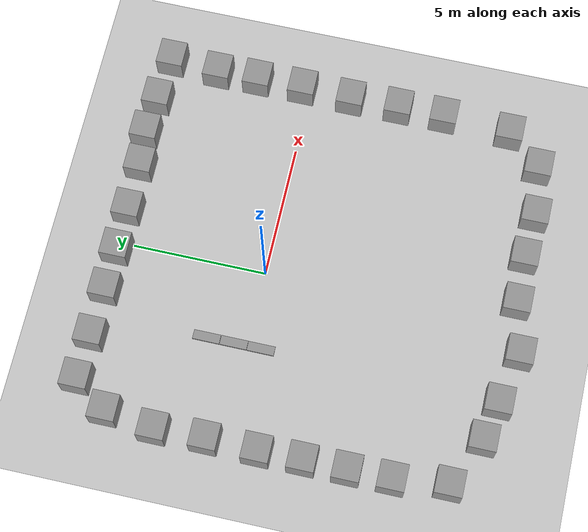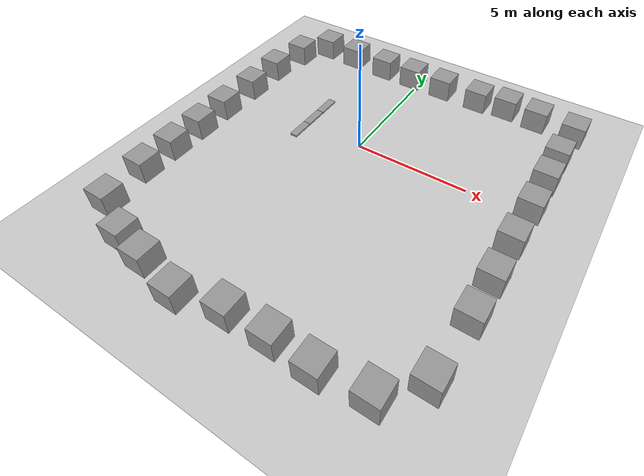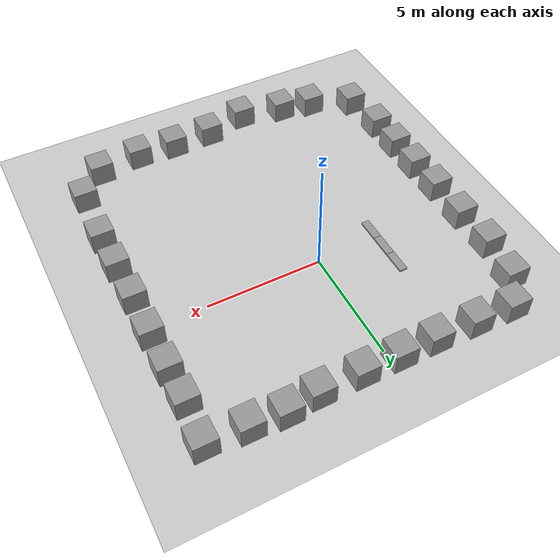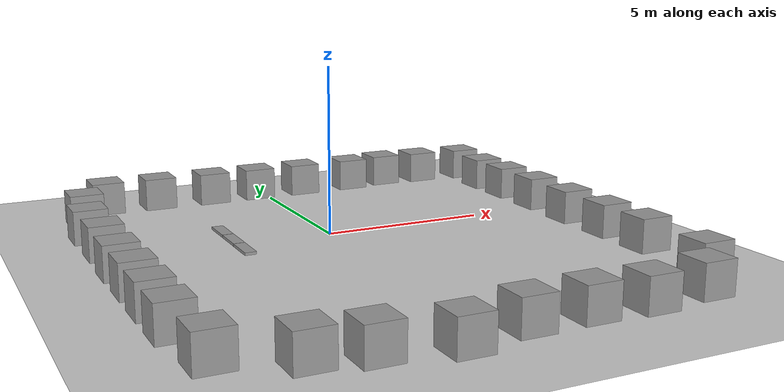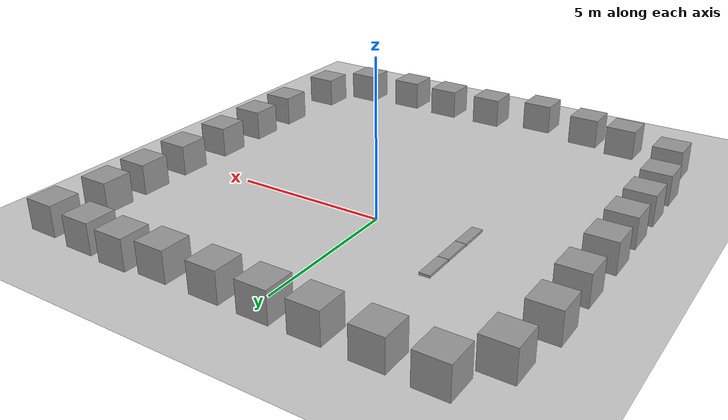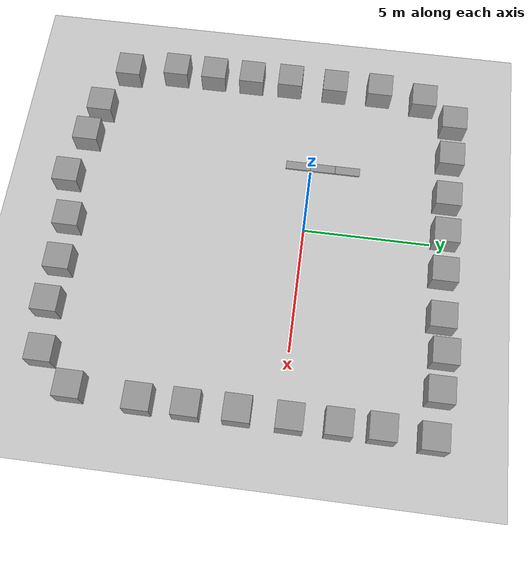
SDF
<sdf version="1.6">
 <world name="default">
  <light name="sun" type="directional">
   <pose>0 0 10 0 -0 0</pose>
   <diffuse>0.8 0.8 0.8 1</diffuse>
   <specular>0.2 0.2 0.2 1</specular>
   <attenuation>
    <range>1000</range>
    <constant>0.9</constant>
    <linear>0.01</linear>
    <quadratic>0.001</quadratic>
   </attenuation>
   <direction>-0.5 0.1 -0.9</direction>
  </light>
  <model name="ground_plane">
   <static>1</static>
   <link name="link">
    <collision name="collision">
     <geometry><plane><normal>0 0 1</normal><size>100 100</size></plane></geometry>
     <surface>
      <contact><collide_bitmask>65535</collide_bitmask></contact>
      <friction><ode><mu>100</mu><mu2>50</mu2></ode></friction>
     </surface>
    </collision>
    <visual name="visual">
     <cast_shadows>0</cast_shadows>
     <geometry><plane><normal>0 0 1</normal><size>100 100</size></plane></geometry>
     <material>
      <script><uri>file://media/materials/scripts/gazebo.material</uri><name>Gazebo/Grey</name></script>
     </material>
    </visual>
   </link>
  </model>
  <gravity>0 0 -9.8</gravity>
  <magnetic_field>6e-06 2.3e-05 -4.2e-05</magnetic_field>
  <atmosphere type="adiabatic"/>
  <physics name="default_physics" default="0" type="ode">
   <max_step_size>0.001</max_step_size>
   <real_time_factor>1</real_time_factor>
   <real_time_update_rate>1000</real_time_update_rate>
  </physics>
  <scene><ambient>0.4 0.4 0.4 1</ambient><background>0.7 0.7 0.7 1</background><shadows>1</shadows></scene>
  <audio><device>default</device></audio>
  <spherical_coordinates>
   <surface_model>EARTH_WGS84</surface_model>
   <latitude_deg>0</latitude_deg>
   <longitude_deg>0</longitude_deg>
   <elevation>0</elevation>
   <heading_deg>0</heading_deg>
  </spherical_coordinates>
  <model name="unit_box">
   <pose>-6.53679 -4.48156 0.499995 1e-05 -0 0</pose>
   <link name="link">
    <inertial>
     <mass>1</mass>
     <inertia>
      <ixx>0.166667</ixx>
      <ixy>0</ixy>
      <ixz>0</ixz>
      <iyy>0.166667</iyy>
      <iyz>0</iyz>
      <izz>0.166667</izz>
     </inertia>
    </inertial>
    <collision name="collision"><geometry><box><size>1 1 1</size></box></geometry></collision>
    <visual name="visual">
     <geometry><box><size>1 1 1</size></box></geometry>
     <material>
      <script><name>Gazebo/Grey</name><uri>file://media/materials/scripts/gazebo.material</uri></script>
     </material>
    </visual>
   </link>
  </model>
  <model name="unit_box_0">
   <pose>-6.54054 -2.87947 0.499995 0 1e-05 0</pose>
   <link name="link">
    <inertial>
     <mass>1</mass>
     <inertia>
      <ixx>0.166667</ixx>
      <ixy>0</ixy>
      <ixz>0</ixz>
      <iyy>0.166667</iyy>
      <iyz>0</iyz>
      <izz>0.166667</izz>
     </inertia>
    </inertial>
    <collision name="collision"><geometry><box><size>1 1 1</size></box></geometry></collision>
    <visual name="visual">
     <geometry><box><size>1 1 1</size></box></geometry>
     <material>
      <script><name>Gazebo/Grey</name><uri>file://media/materials/scripts/gazebo.material</uri></script>
     </material>
    </visual>
   </link>
  </model>
  <model name="unit_box_1">
   <pose>-6.56954 -1.25198 0.499995 1e-05 -0 0</pose>
   <link name="link">
    <inertial>
     <mass>1</mass>
     <inertia>
      <ixx>0.166667</ixx>
      <ixy>0</ixy>
      <ixz>0</ixz>
      <iyy>0.166667</iyy>
      <iyz>0</iyz>
      <izz>0.166667</izz>
     </inertia>
    </inertial>
    <collision name="collision"><geometry><box><size>1 1 1</size></box></geometry></collision>
    <visual name="visual">
     <geometry><box><size>1 1 1</size></box></geometry>
     <material>
      <script><name>Gazebo/Grey</name><uri>file://media/materials/scripts/gazebo.material</uri></script>
     </material>
    </visual>
   </link>
  </model>
  <model name="unit_box_2">
   <pose>-6.53671 0.638358 0.499995 0 1e-05 0</pose>
   <link name="link">
    <inertial>
     <mass>1</mass>
     <inertia>
      <ixx>0.166667</ixx>
      <ixy>0</ixy>
      <ixz>0</ixz>
      <iyy>0.166667</iyy>
      <iyz>0</iyz>
      <izz>0.166667</izz>
     </inertia>
    </inertial>
    <collision name="collision"><geometry><box><size>1 1 1</size></box></geometry></collision>
    <visual name="visual">
     <geometry><box><size>1 1 1</size></box></geometry>
     <material>
      <script><name>Gazebo/Grey</name><uri>file://media/materials/scripts/gazebo.material</uri></script>
     </material>
    </visual>
   </link>
  </model>
  <model name="unit_box_3">
   <pose>-6.52191 -6.07977 0.499995 1e-05 -0 0</pose>
   <link name="link">
    <inertial>
     <mass>1</mass>
     <inertia>
      <ixx>0.166667</ixx>
      <ixy>0</ixy>
      <ixz>0</ixz>
      <iyy>0.166667</iyy>
      <iyz>0</iyz>
      <izz>0.166667</izz>
     </inertia>
    </inertial>
    <collision name="collision"><geometry><box><size>1 1 1</size></box></geometry></collision>
    <visual name="visual">
     <geometry><box><size>1 1 1</size></box></geometry>
     <material>
      <script><name>Gazebo/Grey</name><uri>file://media/materials/scripts/gazebo.material</uri></script>
     </material>
    </visual>
   </link>
  </model>
  <model name="unit_box_4">
   <pose>-4.44257 -8.93231 0.499995 1e-05 -0 0</pose>
   <link name="link">
    <inertial>
     <mass>1</mass>
     <inertia>
      <ixx>0.166667</ixx>
      <ixy>0</ixy>
      <ixz>0</ixz>
      <iyy>0.166667</iyy>
      <iyz>0</iyz>
      <izz>0.166667</izz>
     </inertia>
    </inertial>
    <collision name="collision"><geometry><box><size>1 1 1</size></box></geometry></collision>
    <visual name="visual">
     <geometry><box><size>1 1 1</size></box></geometry>
     <material>
      <script><name>Gazebo/Grey</name><uri>file://media/materials/scripts/gazebo.material</uri></script>
     </material>
    </visual>
   </link>
  </model>
  <model name="unit_box_5">
   <pose>-3.00258 -9.22878 0.499995 0 1e-05 0</pose>
   <link name="link">
    <inertial>
     <mass>1</mass>
     <inertia>
      <ixx>0.166667</ixx>
      <ixy>0</ixy>
      <ixz>0</ixz>
      <iyy>0.166667</iyy>
      <iyz>0</iyz>
      <izz>0.166667</izz>
     </inertia>
    </inertial>
    <collision name="collision"><geometry><box><size>1 1 1</size></box></geometry></collision>
    <visual name="visual">
     <geometry><box><size>1 1 1</size></box></geometry>
     <material>
      <script><name>Gazebo/Grey</name><uri>file://media/materials/scripts/gazebo.material</uri></script>
     </material>
    </visual>
   </link>
  </model>
  <model name="unit_box_6">
   <pose>-1.05987 -9.63701 0.499995 0 1e-05 0</pose>
   <link name="link">
    <inertial>
     <mass>1</mass>
     <inertia>
      <ixx>0.166667</ixx>
      <ixy>0</ixy>
      <ixz>0</ixz>
      <iyy>0.166667</iyy>
      <iyz>0</iyz>
      <izz>0.166667</izz>
     </inertia>
    </inertial>
    <collision name="collision"><geometry><box><size>1 1 1</size></box></geometry></collision>
    <visual name="visual">
     <geometry><box><size>1 1 1</size></box></geometry>
     <material>
      <script><name>Gazebo/Grey</name><uri>file://media/materials/scripts/gazebo.material</uri></script>
     </material>
    </visual>
   </link>
  </model>
  <model name="unit_box_7">
   <pose>0.817007 -9.20678 0.499995 0 1e-05 0</pose>
   <link name="link">
    <inertial>
     <mass>1</mass>
     <inertia>
      <ixx>0.166667</ixx>
      <ixy>0</ixy>
      <ixz>0</ixz>
      <iyy>0.166667</iyy>
      <iyz>0</iyz>
      <izz>0.166667</izz>
     </inertia>
    </inertial>
    <collision name="collision"><geometry><box><size>1 1 1</size></box></geometry></collision>
    <visual name="visual">
     <geometry><box><size>1 1 1</size></box></geometry>
     <material>
      <script><name>Gazebo/Grey</name><uri>file://media/materials/scripts/gazebo.material</uri></script>
     </material>
    </visual>
   </link>
  </model>
  <model name="unit_box_8">
   <pose>2.61171 -9.16624 0.499995 1e-05 -0 0</pose>
   <link name="link">
    <inertial>
     <mass>1</mass>
     <inertia>
      <ixx>0.166667</ixx>
      <ixy>0</ixy>
      <ixz>0</ixz>
      <iyy>0.166667</iyy>
      <iyz>0</iyz>
      <izz>0.166667</izz>
     </inertia>
    </inertial>
    <collision name="collision"><geometry><box><size>1 1 1</size></box></geometry></collision>
    <visual name="visual">
     <geometry><box><size>1 1 1</size></box></geometry>
     <material>
      <script><name>Gazebo/Grey</name><uri>file://media/materials/scripts/gazebo.material</uri></script>
     </material>
    </visual>
   </link>
  </model>
  <model name="unit_box_9">
   <pose>4.31245 -9.25247 0.499995 0 1e-05 0</pose>
   <link name="link">
    <inertial>
     <mass>1</mass>
     <inertia>
      <ixx>0.166667</ixx>
      <ixy>0</ixy>
      <ixz>0</ixz>
      <iyy>0.166667</iyy>
      <iyz>0</iyz>
      <izz>0.166667</izz>
     </inertia>
    </inertial>
    <collision name="collision"><geometry><box><size>1 1 1</size></box></geometry></collision>
    <visual name="visual">
     <geometry><box><size>1 1 1</size></box></geometry>
     <material>
      <script><name>Gazebo/Grey</name><uri>file://media/materials/scripts/gazebo.material</uri></script>
     </material>
    </visual>
   </link>
  </model>
  <model name="unit_box_10">
   <pose>6.20244 -9.03196 0.499995 0 1e-05 0</pose>
   <link name="link">
    <inertial>
     <mass>1</mass>
     <inertia>
      <ixx>0.166667</ixx>
      <ixy>0</ixy>
      <ixz>0</ixz>
      <iyy>0.166667</iyy>
      <iyz>0</iyz>
      <izz>0.166667</izz>
     </inertia>
    </inertial>
    <collision name="collision"><geometry><box><size>1 1 1</size></box></geometry></collision>
    <visual name="visual">
     <geometry><box><size>1 1 1</size></box></geometry>
     <material>
      <script><name>Gazebo/Grey</name><uri>file://media/materials/scripts/gazebo.material</uri></script>
     </material>
    </visual>
   </link>
  </model>
  <model name="unit_box_11">
   <pose>7.50601 -5.19262 0.499995 1e-05 -0 0</pose>
   <link name="link">
    <inertial>
     <mass>1</mass>
     <inertia>
      <ixx>0.166667</ixx>
      <ixy>0</ixy>
      <ixz>0</ixz>
      <iyy>0.166667</iyy>
      <iyz>0</iyz>
      <izz>0.166667</izz>
     </inertia>
    </inertial>
    <collision name="collision"><geometry><box><size>1 1 1</size></box></geometry></collision>
    <visual name="visual">
     <geometry><box><size>1 1 1</size></box></geometry>
     <material>
      <script><name>Gazebo/Grey</name><uri>file://media/materials/scripts/gazebo.material</uri></script>
     </material>
    </visual>
   </link>
  </model>
  <model name="unit_box_12">
   <pose>7.49559 -3.44066 0.499995 0 1e-05 0</pose>
   <link name="link">
    <inertial>
     <mass>1</mass>
     <inertia>
      <ixx>0.166667</ixx>
      <ixy>0</ixy>
      <ixz>0</ixz>
      <iyy>0.166667</iyy>
      <iyz>0</iyz>
      <izz>0.166667</izz>
     </inertia>
    </inertial>
    <collision name="collision"><geometry><box><size>1 1 1</size></box></geometry></collision>
    <visual name="visual">
     <geometry><box><size>1 1 1</size></box></geometry>
     <material>
      <script><name>Gazebo/Grey</name><uri>file://media/materials/scripts/gazebo.material</uri></script>
     </material>
    </visual>
   </link>
  </model>
  <model name="unit_box_13">
   <pose>7.46605 -1.59912 0.499995 1e-05 -0 0</pose>
   <link name="link">
    <inertial>
     <mass>1</mass>
     <inertia>
      <ixx>0.166667</ixx>
      <ixy>0</ixy>
      <ixz>0</ixz>
      <iyy>0.166667</iyy>
      <iyz>0</iyz>
      <izz>0.166667</izz>
     </inertia>
    </inertial>
    <collision name="collision"><geometry><box><size>1 1 1</size></box></geometry></collision>
    <visual name="visual">
     <geometry><box><size>1 1 1</size></box></geometry>
     <material>
      <script><name>Gazebo/Grey</name><uri>file://media/materials/scripts/gazebo.material</uri></script>
     </material>
    </visual>
   </link>
  </model>
  <model name="unit_box_14">
   <pose>7.50448 0.287221 0.499995 0 1e-05 0</pose>
   <link name="link">
    <inertial>
     <mass>1</mass>
     <inertia>
      <ixx>0.166667</ixx>
      <ixy>0</ixy>
      <ixz>0</ixz>
      <iyy>0.166667</iyy>
      <iyz>0</iyz>
      <izz>0.166667</izz>
     </inertia>
    </inertial>
    <collision name="collision"><geometry><box><size>1 1 1</size></box></geometry></collision>
    <visual name="visual">
     <geometry><box><size>1 1 1</size></box></geometry>
     <material>
      <script><name>Gazebo/Grey</name><uri>file://media/materials/scripts/gazebo.material</uri></script>
     </material>
    </visual>
   </link>
  </model>
  <model name="unit_box_15">
   <pose>7.49087 2.03632 0.499995 1e-05 -0 0</pose>
   <link name="link">
    <inertial>
     <mass>1</mass>
     <inertia>
      <ixx>0.166667</ixx>
      <ixy>0</ixy>
      <ixz>0</ixz>
      <iyy>0.166667</iyy>
      <iyz>0</iyz>
      <izz>0.166667</izz>
     </inertia>
    </inertial>
    <collision name="collision"><geometry><box><size>1 1 1</size></box></geometry></collision>
    <visual name="visual">
     <geometry><box><size>1 1 1</size></box></geometry>
     <material>
      <script><name>Gazebo/Grey</name><uri>file://media/materials/scripts/gazebo.material</uri></script>
     </material>
    </visual>
   </link>
  </model>
  <model name="unit_box_16">
   <pose>7.46502 3.58569 0.499995 0 1e-05 0</pose>
   <link name="link">
    <inertial>
     <mass>1</mass>
     <inertia>
      <ixx>0.166667</ixx>
      <ixy>0</ixy>
      <ixz>0</ixz>
      <iyy>0.166667</iyy>
      <iyz>0</iyz>
      <izz>0.166667</izz>
     </inertia>
    </inertial>
    <collision name="collision"><geometry><box><size>1 1 1</size></box></geometry></collision>
    <visual name="visual">
     <geometry><box><size>1 1 1</size></box></geometry>
     <material>
      <script><name>Gazebo/Grey</name><uri>file://media/materials/scripts/gazebo.material</uri></script>
     </material>
    </visual>
   </link>
  </model>
  <model name="unit_box_17">
   <pose>7.58514 5.41899 0.499995 1e-05 -0 0</pose>
   <link name="link">
    <inertial>
     <mass>1</mass>
     <inertia>
      <ixx>0.166667</ixx>
      <ixy>0</ixy>
      <ixz>0</ixz>
      <iyy>0.166667</iyy>
      <iyz>0</iyz>
      <izz>0.166667</izz>
     </inertia>
    </inertial>
    <collision name="collision"><geometry><box><size>1 1 1</size></box></geometry></collision>
    <visual name="visual">
     <geometry><box><size>1 1 1</size></box></geometry>
     <material>
      <script><name>Gazebo/Grey</name><uri>file://media/materials/scripts/gazebo.material</uri></script>
     </material>
    </visual>
   </link>
  </model>
  <model name="unit_box_18">
   <pose>-6.57991 2.5031 0.499995 0 1e-05 0</pose>
   <link name="link">
    <inertial>
     <mass>1</mass>
     <inertia>
      <ixx>0.166667</ixx>
      <ixy>0</ixy>
      <ixz>0</ixz>
      <iyy>0.166667</iyy>
      <iyz>0</iyz>
      <izz>0.166667</izz>
     </inertia>
    </inertial>
    <collision name="collision"><geometry><box><size>1 1 1</size></box></geometry></collision>
    <visual name="visual">
     <geometry><box><size>1 1 1</size></box></geometry>
     <material>
      <script><name>Gazebo/Grey</name><uri>file://media/materials/scripts/gazebo.material</uri></script>
     </material>
    </visual>
   </link>
  </model>
  <model name="unit_box_19">
   <pose>-6.30877 4.35515 0.499995 1e-05 -0 0</pose>
   <link name="link">
    <inertial>
     <mass>1</mass>
     <inertia>
      <ixx>0.166667</ixx>
      <ixy>0</ixy>
      <ixz>0</ixz>
      <iyy>0.166667</iyy>
      <iyz>0</iyz>
      <izz>0.166667</izz>
     </inertia>
    </inertial>
    <collision name="collision"><geometry><box><size>1 1 1</size></box></geometry></collision>
    <visual name="visual">
     <geometry><box><size>1 1 1</size></box></geometry>
     <material>
      <script><name>Gazebo/Grey</name><uri>file://media/materials/scripts/gazebo.material</uri></script>
     </material>
    </visual>
   </link>
  </model>
  <model name="unit_box_20">
   <pose>-5.38758 5.63065 0.499995 0 1e-05 0</pose>
   <link name="link">
    <inertial>
     <mass>1</mass>
     <inertia>
      <ixx>0.166667</ixx>
      <ixy>0</ixy>
      <ixz>0</ixz>
      <iyy>0.166667</iyy>
      <iyz>0</iyz>
      <izz>0.166667</izz>
     </inertia>
    </inertial>
    <collision name="collision"><geometry><box><size>1 1 1</size></box></geometry></collision>
    <visual name="visual">
     <geometry><box><size>1 1 1</size></box></geometry>
     <material>
      <script><name>Gazebo/Grey</name><uri>file://media/materials/scripts/gazebo.material</uri></script>
     </material>
    </visual>
   </link>
  </model>
  <model name="unit_box_21">
   <pose>-3.70928 5.57719 0.499995 1e-05 -0 0</pose>
   <link name="link">
    <inertial>
     <mass>1</mass>
     <inertia>
      <ixx>0.166667</ixx>
      <ixy>0</ixy>
      <ixz>0</ixz>
      <iyy>0.166667</iyy>
      <iyz>0</iyz>
      <izz>0.166667</izz>
     </inertia>
    </inertial>
    <collision name="collision"><geometry><box><size>1 1 1</size></box></geometry></collision>
    <visual name="visual">
     <geometry><box><size>1 1 1</size></box></geometry>
     <material>
      <script><name>Gazebo/Grey</name><uri>file://media/materials/scripts/gazebo.material</uri></script>
     </material>
    </visual>
   </link>
  </model>
  <model name="unit_box_22">
   <pose>-1.90461 5.52546 0.499995 0 1e-05 0</pose>
   <link name="link">
    <inertial>
     <mass>1</mass>
     <inertia>
      <ixx>0.166667</ixx>
      <ixy>0</ixy>
      <ixz>0</ixz>
      <iyy>0.166667</iyy>
      <iyz>0</iyz>
      <izz>0.166667</izz>
     </inertia>
    </inertial>
    <collision name="collision"><geometry><box><size>1 1 1</size></box></geometry></collision>
    <visual name="visual">
     <geometry><box><size>1 1 1</size></box></geometry>
     <material>
      <script><name>Gazebo/Grey</name><uri>file://media/materials/scripts/gazebo.material</uri></script>
     </material>
    </visual>
   </link>
  </model>
  <model name="unit_box_23">
   <pose>-0.331378 5.52398 0.499995 1e-05 -0 0</pose>
   <link name="link">
    <inertial>
     <mass>1</mass>
     <inertia>
      <ixx>0.166667</ixx>
      <ixy>0</ixy>
      <ixz>0</ixz>
      <iyy>0.166667</iyy>
      <iyz>0</iyz>
      <izz>0.166667</izz>
     </inertia>
    </inertial>
    <collision name="collision"><geometry><box><size>1 1 1</size></box></geometry></collision>
    <visual name="visual">
     <geometry><box><size>1 1 1</size></box></geometry>
     <material>
      <script><name>Gazebo/Grey</name><uri>file://media/materials/scripts/gazebo.material</uri></script>
     </material>
    </visual>
   </link>
  </model>
  <model name="unit_box_24">
   <pose>1.29049 5.51265 0.499995 0 1e-05 0</pose>
   <link name="link">
    <inertial>
     <mass>1</mass>
     <inertia>
      <ixx>0.166667</ixx>
      <ixy>0</ixy>
      <ixz>0</ixz>
      <iyy>0.166667</iyy>
      <iyz>0</iyz>
      <izz>0.166667</izz>
     </inertia>
    </inertial>
    <collision name="collision"><geometry><box><size>1 1 1</size></box></geometry></collision>
    <visual name="visual">
     <geometry><box><size>1 1 1</size></box></geometry>
     <material>
      <script><name>Gazebo/Grey</name><uri>file://media/materials/scripts/gazebo.material</uri></script>
     </material>
    </visual>
   </link>
  </model>
  <model name="unit_box_25">
   <pose>3.10142 5.51717 0.499995 1e-05 -0 0</pose>
   <link name="link">
    <inertial>
     <mass>1</mass>
     <inertia>
      <ixx>0.166667</ixx>
      <ixy>0</ixy>
      <ixz>0</ixz>
      <iyy>0.166667</iyy>
      <iyz>0</iyz>
      <izz>0.166667</izz>
     </inertia>
    </inertial>
    <collision name="collision"><geometry><box><size>1 1 1</size></box></geometry></collision>
    <visual name="visual">
     <geometry><box><size>1 1 1</size></box></geometry>
     <material>
      <script><name>Gazebo/Grey</name><uri>file://media/materials/scripts/gazebo.material</uri></script>
     </material>
    </visual>
   </link>
  </model>
  <model name="unit_box_26">
   <pose>4.46223 5.66104 0.499995 0 1e-05 0</pose>
   <link name="link">
    <inertial>
     <mass>1</mass>
     <inertia>
      <ixx>0.166667</ixx>
      <ixy>0</ixy>
      <ixz>0</ixz>
      <iyy>0.166667</iyy>
      <iyz>0</iyz>
      <izz>0.166667</izz>
     </inertia>
    </inertial>
    <collision name="collision"><geometry><box><size>1 1 1</size></box></geometry></collision>
    <visual name="visual">
     <geometry><box><size>1 1 1</size></box></geometry>
     <material>
      <script><name>Gazebo/Grey</name><uri>file://media/materials/scripts/gazebo.material</uri></script>
     </material>
    </visual>
   </link>
  </model>
  <model name="unit_box_27">
   <pose>5.89952 5.56166 0.499995 1e-05 -0 0</pose>
   <link name="link">
    <inertial>
     <mass>1</mass>
     <inertia>
      <ixx>0.166667</ixx>
      <ixy>0</ixy>
      <ixz>0</ixz>
      <iyy>0.166667</iyy>
      <iyz>0</iyz>
      <izz>0.166667</izz>
     </inertia>
    </inertial>
    <collision name="collision"><geometry><box><size>1 1 1</size></box></geometry></collision>
    <visual name="visual">
     <geometry><box><size>1 1 1</size></box></geometry>
     <material>
      <script><name>Gazebo/Grey</name><uri>file://media/materials/scripts/gazebo.material</uri></script>
     </material>
    </visual>
   </link>
  </model>
  <model name="unit_box_28">
   <pose>7.37064 -7.7393 0.499995 1e-05 -0 0</pose>
   <link name="link">
    <inertial>
     <mass>1</mass>
     <inertia>
      <ixx>0.166667</ixx>
      <ixy>0</ixy>
      <ixz>0</ixz>
      <iyy>0.166667</iyy>
      <iyz>0</iyz>
      <izz>0.166667</izz>
     </inertia>
    </inertial>
    <collision name="collision"><geometry><box><size>1 1 1</size></box></geometry></collision>
    <visual name="visual">
     <geometry><box><size>1 1 1</size></box></geometry>
     <material>
      <script><name>Gazebo/Grey</name><uri>file://media/materials/scripts/gazebo.material</uri></script>
     </material>
    </visual>
   </link>
  </model>
  <model name="unit_box_29">
   <pose>-6.28069 -8.0745 0.499995 0 1e-05 0</pose>
   <link name="link">
    <inertial>
     <mass>1</mass>
     <inertia>
      <ixx>0.166667</ixx>
      <ixy>0</ixy>
      <ixz>0</ixz>
      <iyy>0.166667</iyy>
      <iyz>0</iyz>
      <izz>0.166667</izz>
     </inertia>
    </inertial>
    <collision name="collision"><geometry><box><size>1 1 1</size></box></geometry></collision>
    <visual name="visual">
     <geometry><box><size>1 1 1</size></box></geometry>
     <material>
      <script><name>Gazebo/Grey</name><uri>file://media/materials/scripts/gazebo.material</uri></script>
     </material>
    </visual>
   </link>
  </model>
  <model name="unit_box_30">
   <pose>-2.83361 -0.501175 0.041287 0 -0 0</pose>
   <link name="link">
    <inertial>
     <mass>1</mass>
     <inertia>
      <ixx>0.166667</ixx>
      <ixy>0</ixy>
      <ixz>0</ixz>
      <iyy>0.166667</iyy>
      <iyz>0</iyz>
      <izz>0.166667</izz>
     </inertia>
    </inertial>
    <collision name="collision"><geometry><box><size>0.345563 1 0.0825748</size></box></geometry></collision>
    <visual name="visual">
     <geometry><box><size>0.345563 1 0.0825748</size></box></geometry>
     <material>
      <script><name>Gazebo/Grey</name><uri>file://media/materials/scripts/gazebo.material</uri></script>
     </material>
    </visual>
   </link>
  </model>
  <model name="unit_box_30_clone">
   <pose>-2.83048 0.509625 0.041287 0 -0 0</pose>
   <link name="link">
    <inertial>
     <mass>1</mass>
     <inertia>
      <ixx>0.166667</ixx>
      <ixy>0</ixy>
      <ixz>0</ixz>
      <iyy>0.166667</iyy>
      <iyz>0</iyz>
      <izz>0.166667</izz>
     </inertia>
    </inertial>
    <collision name="collision"><geometry><box><size>0.345563 1 0.082575</size></box></geometry></collision>
    <visual name="visual">
     <geometry><box><size>0.345563 1 0.082575</size></box></geometry>
     <material>
      <script><name>Gazebo/Grey</name><uri>file://media/materials/scripts/gazebo.material</uri></script>
     </material>
    </visual>
   </link>
  </model>
  <model name="unit_box_30_clone_0">
   <pose>-2.83112 1.52323 0.041287 0 -0 0</pose>
   <link name="link">
    <inertial>
     <mass>1</mass>
     <inertia>
      <ixx>0.166667</ixx>
      <ixy>0</ixy>
      <ixz>0</ixz>
      <iyy>0.166667</iyy>
      <iyz>0</iyz>
      <izz>0.166667</izz>
     </inertia>
    </inertial>
    <collision name="collision"><geometry><box><size>0.345563 1 0.082575</size></box></geometry></collision>
    <visual name="visual">
     <geometry><box><size>0.345563 1 0.082575</size></box></geometry>
     <material>
      <script><name>Gazebo/Grey</name><uri>file://media/materials/scripts/gazebo.material</uri></script>
     </material>
    </visual>
   </link>
  </model>
 </world>
</sdf>
